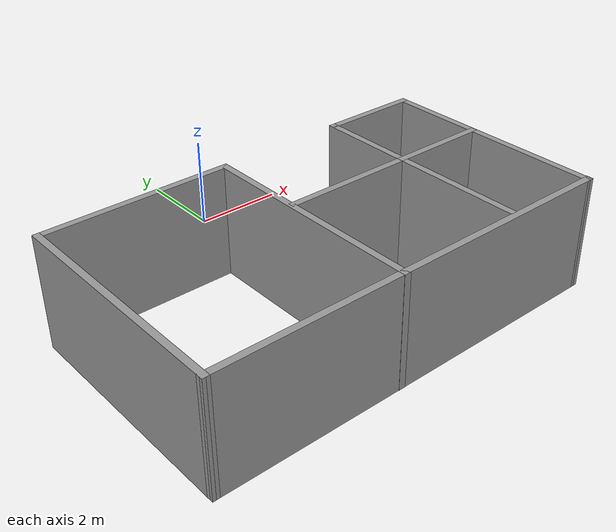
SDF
<?xml version='1.0'?>
<sdf version='1.6'>
  <model name='office_building'>
    <pose frame=''>-0.275325 -4.62682 0 0 -0 0</pose>
    <link name='Wall_16'>
      <collision name='Wall_16_Collision'>
        <geometry>
          <box>
            <size>5.25 0.15 2.5</size>
          </box>
        </geometry>
        <pose frame=''>0 0 1.25 0 -0 0</pose>
      </collision>
      <visual name='Wall_16_Visual'>
        <pose frame=''>0 0 1.25 0 -0 0</pose>
        <geometry>
          <box>
            <size>5.25 0.15 2.5</size>
          </box>
        </geometry>
        <material>
          <script>
            <uri>file://media/materials/scripts/gazebo.material</uri>
            <name>Gazebo/Grey</name>
          </script>
          <ambient>1 1 1 1</ambient>
        </material>
        <meta>
          <layer>0</layer>
        </meta>
      </visual>
      <pose frame=''>-4.575 4.1e-05 0 0 -0 1.5708</pose>
    </link>
    <link name='Wall_17'>
      <collision name='Wall_17_Collision'>
        <geometry>
          <box>
            <size>4.25 0.15 2.5</size>
          </box>
        </geometry>
        <pose frame=''>0 0 1.25 0 -0 0</pose>
      </collision>
      <visual name='Wall_17_Visual'>
        <pose frame=''>0 0 1.25 0 -0 0</pose>
        <geometry>
          <box>
            <size>4.25 0.15 2.5</size>
          </box>
        </geometry>
        <material>
          <script>
            <uri>file://media/materials/scripts/gazebo.material</uri>
            <name>Gazebo/Grey</name>
          </script>
          <ambient>1 1 1 1</ambient>
        </material>
        <meta>
          <layer>0</layer>
        </meta>
      </visual>
      <pose frame=''>-2.525 2.55004 0 0 -0 0</pose>
    </link>
    <link name='Wall_18'>
      <collision name='Wall_18_Collision'>
        <geometry>
          <box>
            <size>5.25 0.15 2.5</size>
          </box>
        </geometry>
        <pose frame=''>0 0 1.25 0 -0 0</pose>
      </collision>
      <visual name='Wall_18_Visual'>
        <pose frame=''>0 0 1.25 0 -0 0</pose>
        <geometry>
          <box>
            <size>5.25 0.15 2.5</size>
          </box>
        </geometry>
        <material>
          <script>
            <uri>file://media/materials/scripts/gazebo.material</uri>
            <name>Gazebo/Grey</name>
          </script>
          <ambient>1 1 1 1</ambient>
        </material>
        <meta>
          <layer>0</layer>
        </meta>
      </visual>
      <pose frame=''>-0.475 4.1e-05 0 0 0 -1.5708</pose>
    </link>
    <link name='Wall_20'>
      <collision name='Wall_20_Collision'>
        <geometry>
          <box>
            <size>3 0.15 2.5</size>
          </box>
        </geometry>
        <pose frame=''>0 0 1.25 0 -0 0</pose>
      </collision>
      <visual name='Wall_20_Visual'>
        <pose frame=''>0 0 1.25 0 -0 0</pose>
        <geometry>
          <box>
            <size>3 0.15 2.5</size>
          </box>
        </geometry>
        <material>
          <script>
            <uri>file://media/materials/scripts/gazebo.material</uri>
            <name>Gazebo/Grey</name>
          </script>
          <ambient>1 1 1 1</ambient>
        </material>
        <meta>
          <layer>0</layer>
        </meta>
      </visual>
      <pose frame=''>1.01032 0.446816 0 0 -0 3.14159</pose>
    </link>
    <link name='Wall_22'>
      <collision name='Wall_22_Collision'>
        <geometry>
          <box>
            <size>2.25 0.15 2.5</size>
          </box>
        </geometry>
        <pose frame=''>0 0 1.25 0 -0 0</pose>
      </collision>
      <visual name='Wall_22_Visual'>
        <pose frame=''>0 0 1.25 0 -0 0</pose>
        <geometry>
          <box>
            <size>2.25 0.15 2.5</size>
          </box>
        </geometry>
        <material>
          <script>
            <uri>file://media/materials/scripts/gazebo.material</uri>
            <name>Gazebo/Grey</name>
          </script>
          <ambient>1 1 1 1</ambient>
        </material>
        <meta>
          <layer>0</layer>
        </meta>
      </visual>
      <pose frame=''>3.48533 0.446816 0 0 -0 0</pose>
    </link>
    <link name='Wall_25'>
      <collision name='Wall_25_Collision'>
        <geometry>
          <box>
            <size>3 0.15 2.5</size>
          </box>
        </geometry>
        <pose frame=''>0 0 1.25 0 -0 0</pose>
      </collision>
      <visual name='Wall_25_Visual'>
        <pose frame=''>0 0 1.25 0 -0 0</pose>
        <geometry>
          <box>
            <size>3 0.15 2.5</size>
          </box>
        </geometry>
        <material>
          <script>
            <uri>file://media/materials/scripts/gazebo.material</uri>
            <name>Gazebo/Grey</name>
          </script>
          <ambient>1 1 1 1</ambient>
        </material>
        <meta>
          <layer>0</layer>
        </meta>
      </visual>
      <pose frame=''>2.43533 -0.978184 0 0 0 -1.5708</pose>
    </link>
    <link name='Wall_4'>
      <collision name='Wall_4_Collision'>
        <geometry>
          <box>
            <size>2.25 0.15 2.5</size>
          </box>
        </geometry>
        <pose frame=''>0 0 1.25 0 -0 0</pose>
      </collision>
      <visual name='Wall_4_Visual'>
        <pose frame=''>0 0 1.25 0 -0 0</pose>
        <geometry>
          <box>
            <size>2.25 0.15 2.5</size>
          </box>
        </geometry>
        <material>
          <script>
            <uri>file://media/materials/scripts/gazebo.material</uri>
            <name>Gazebo/Grey</name>
          </script>
          <ambient>1 1 1 1</ambient>
        </material>
        <meta>
          <layer>0</layer>
        </meta>
      </visual>
      <pose frame=''>2.43533 1.49682 0 0 -0 1.5708</pose>
    </link>
    <link name='Wall_5'>
      <collision name='Wall_5_Collision'>
        <geometry>
          <box>
            <size>2.25 0.15 2.5</size>
          </box>
        </geometry>
        <pose frame=''>0 0 1.25 0 -0 0</pose>
      </collision>
      <visual name='Wall_5_Visual'>
        <pose frame=''>0 0 1.25 0 -0 0</pose>
        <geometry>
          <box>
            <size>2.25 0.15 2.5</size>
          </box>
        </geometry>
        <material>
          <script>
            <uri>file://media/materials/scripts/gazebo.material</uri>
            <name>Gazebo/Grey</name>
          </script>
          <ambient>1 1 1 1</ambient>
        </material>
        <meta>
          <layer>0</layer>
        </meta>
      </visual>
      <pose frame=''>3.48533 2.54682 0 0 -0 0</pose>
    </link>
    <link name='Wall_6'>
      <collision name='Wall_6_Collision'>
        <geometry>
          <box>
            <size>5.23684 0.15 2.5</size>
          </box>
        </geometry>
        <pose frame=''>0 0 1.25 0 -0 0</pose>
      </collision>
      <visual name='Wall_6_Visual'>
        <pose frame=''>0 0 1.25 0 -0 0</pose>
        <geometry>
          <box>
            <size>5.23684 0.15 2.5</size>
          </box>
        </geometry>
        <material>
          <script>
            <uri>file://media/materials/scripts/gazebo.material</uri>
            <name>Gazebo/Grey</name>
          </script>
          <ambient>1 1 1 1</ambient>
        </material>
        <meta>
          <layer>0</layer>
        </meta>
      </visual>
      <pose frame=''>4.54855 0.003428 0 0 0 -1.5656</pose>
    </link>
    <link name='Wall_7'>
      <collision name='Wall_7_Collision'>
        <geometry>
          <box>
            <size>9.30001 0.15 2.5</size>
          </box>
        </geometry>
        <pose frame=''>0 0 1.25 0 -0 0</pose>
      </collision>
      <visual name='Wall_7_Visual'>
        <pose frame=''>0 0 1.25 0 -0 0</pose>
        <geometry>
          <box>
            <size>9.30001 0.15 2.5</size>
          </box>
        </geometry>
        <material>
          <script>
            <uri>file://media/materials/scripts/gazebo.material</uri>
            <name>Gazebo/Grey</name>
          </script>
          <ambient>1 1 1 1</ambient>
        </material>
        <meta>
          <layer>0</layer>
        </meta>
      </visual>
      <pose frame=''>0 -2.54496 0 0 0 -3.1405</pose>
    </link>
    <static>1</static>
  </model>
</sdf>
